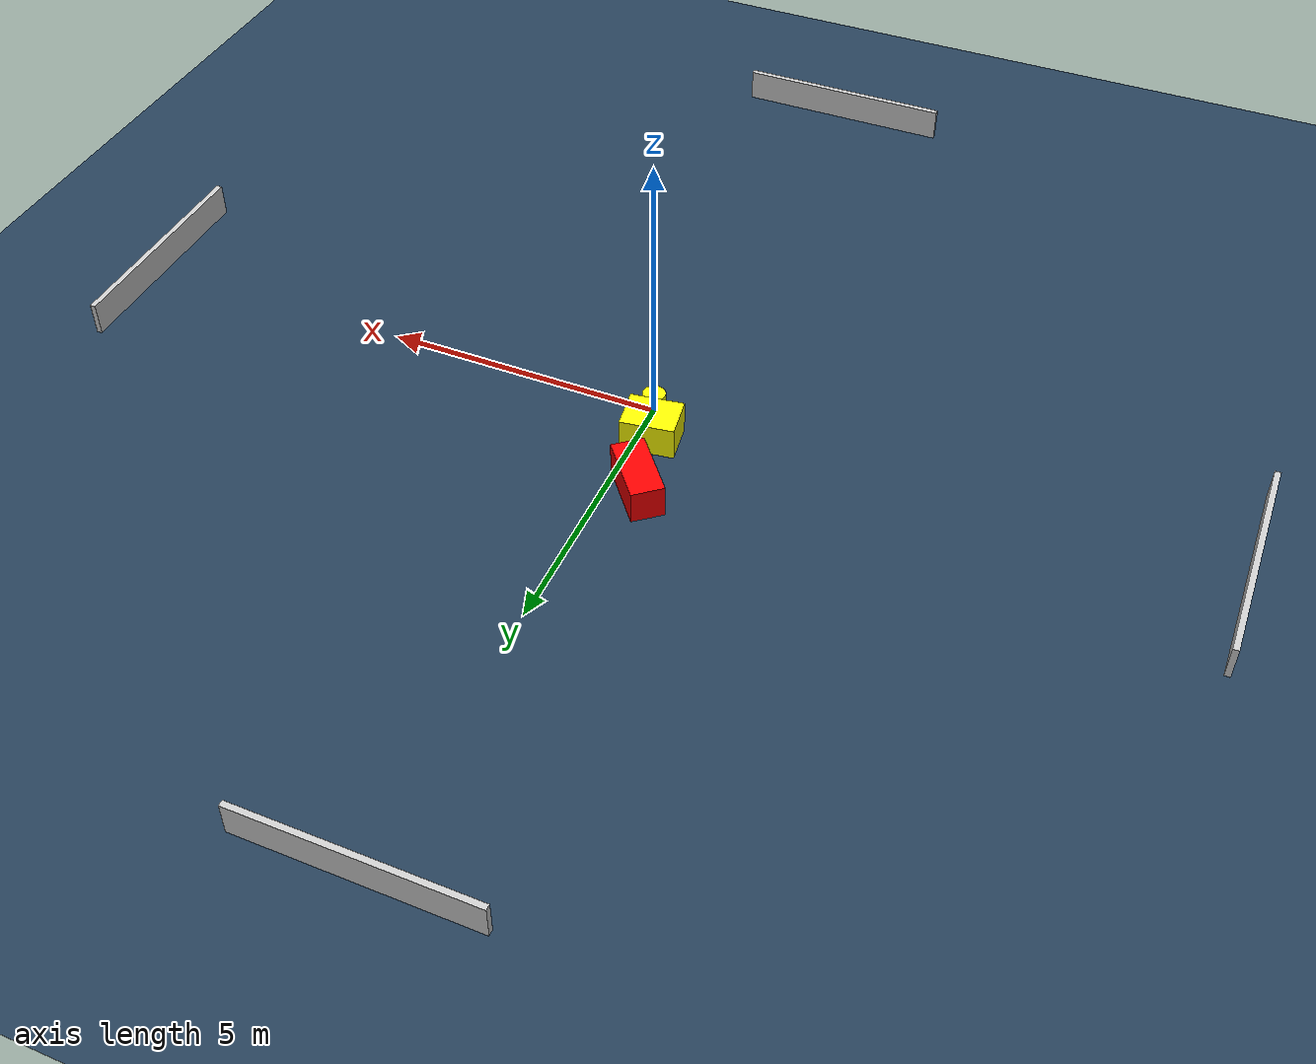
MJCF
<?xml version="1.0" ?>
<mujoco model="generated_environment">
  <option timestep="0.01" integrator="RK4" cone="elliptic"/>
  <default>
    <geom density="1"/>
  </default>
  <asset>
    <texture builtin="gradient" height="3072" name="skybox" rgb1="0.3 0.5 0.7" rgb2="0 0 0" type="skybox" width="512"/>
    <texture builtin="checker" height="300" name="groundplane" rgb1="0.2 0.3 0.4" rgb2="0.1 0.2 0.3" type="2d" width="300"/>
    <material name="groundplane" reflectance="0.2" texrepeat="5 5" texture="groundplane"/>
  </asset>
  <worldbody>
    <light dir="0 0 -1" directional="true" pos="0 0 1.5"/>
    <geom condim="3" friction="0.5 0.005 0.001" material="groundplane" name="floor" pos="0 0 0" size="0 0 0.05" type="plane"/>
    <body name="walls">
      <geom name="wall_1" condim="4" pos="-10.0 0.0 0.3" rgba="0.800000011920929 0.800000011920929 0.800000011920929 1.0" size="0.05 2.0 0.3" type="box"/>
      <geom name="wall_2" condim="4" pos="10.0 0.0 0.3" rgba="0.800000011920929 0.800000011920929 0.800000011920929 1.0" size="0.05 2.0 0.3" type="box"/>
      <geom name="wall_3" condim="4" pos="0.0 -10.0 0.3" rgba="0.800000011920929 0.800000011920929 0.800000011920929 1.0" size="2.0 0.05 0.3" type="box"/>
      <geom name="wall_4" condim="4" pos="0.0 10.0 0.3" rgba="0.800000011920929 0.800000011920929 0.800000011920929 1.0" size="2.0 0.05 0.3" type="box"/>
    </body>
    <body name="robot">
      <joint name="joint_x" type="slide" pos="0 0 0" axis="1 0 0"/>
      <joint name="joint_y" type="slide" pos="0 0 0" axis="0 1 0"/>
      <geom name="robot" type="cylinder" pos="0.0 0.0 0.2" size="0.2 0.2 0.0" mass="5.0" friction="1.0 0.005 0.0001" condim="4" rgba="1.0 1.0 0.0 1.0"/>
    </body>
    <body name="obstacle_1_movable">
      <geom name="obstacle_1_movable" condim="4" pos="-0.24407313548867182 0.658440931612098 0.3" euler="0 0 278.31656179475135" friction="0.0 0.005 0.001" rgba="1.0 1.0 0.0 1.0" size="0.36051474195961186 0.46954894460678026 0.3" type="box" mass="0.1"/>
      <joint type="free"/>
    </body>
    <body name="obstacle_2_static">
      <geom name="obstacle_2_static" condim="4" pos="-0.5319742878633456 1.9214378020676055 0.3" euler="0 0 309.4182526763517" friction="0.0 0.005 0.001" rgba="1.0 0.0 0.0 1.0" size="0.6055725007913534 0.28729421569070546 0.3" type="box"/>
    </body>
  </worldbody>
  <actuator>
    <motor name="actuator_x" joint="joint_x" gear="1" ctrlrange="-1 1"/>
    <motor name="actuator_y" joint="joint_y" gear="1" ctrlrange="-1 1"/>
  </actuator>
</mujoco>
